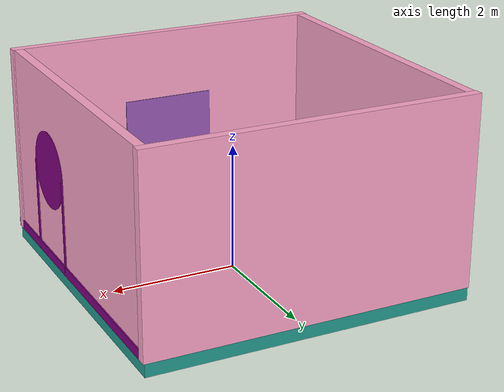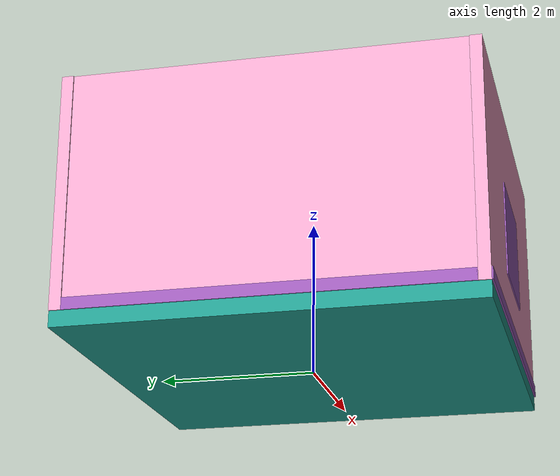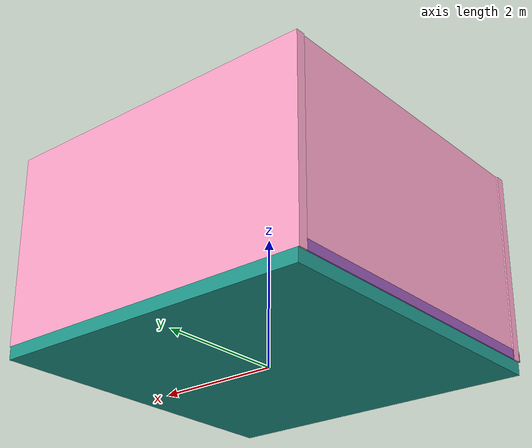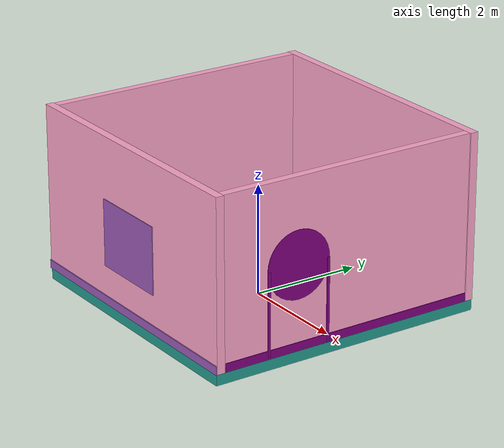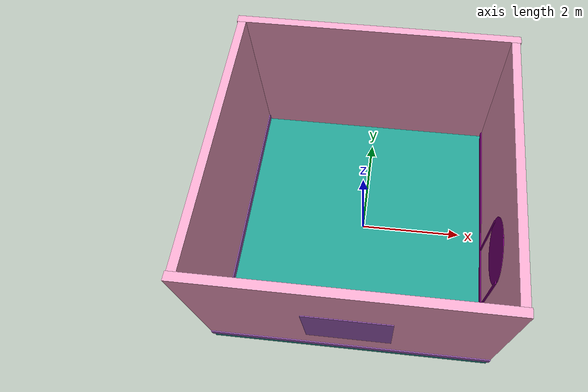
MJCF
<?xml version="1.0" encoding="utf-8"?>
<mujoco model="js7e01b6mxsftwqhk83pvdf6m5891mqv">

  <compiler angle="radian" autolimits="true" balanceinertia="true" boundmass="1.00e-6" boundinertia="1.00e-8"/>

  <option
    gravity="0 0 -9.8100"
    timestep="0.0050"
    integrator="implicitfast"
    cone="elliptic"
    impratio="10.00"
    solver="Newton"
    iterations="100"
    ls_iterations="50"
    tolerance="1.00e-8"
    ls_tolerance="0.0100"
    ccd_iterations="50"
    ccd_tolerance="1.00e-6"
    sdf_iterations="10"
    sdf_initpoints="40">
    <flag energy="enable" nativeccd="enable" island="enable"/>
  </option>

  <size nconmax="500" njmax="1500"/>
  <default>
    <geom condim="6" friction="0.8000 0.005 0.005" solref="0.005 1.2" solimp="0.95 0.99 0.001"/>
    <joint armature="0.01" damping="0.5"/>
  </default>

  <visual>
    <headlight ambient="0.18 0.18 0.18" diffuse="0.30 0.30 0.30" specular="0.0 0.0 0.0"/>
  </visual>

  <asset>
    <texture name="_ss_skybox" type="skybox" builtin="gradient" rgb1="0.1946 0.3968 1.0000" rgb2="0.9047 0.9387 1.0000" width="32" height="512"/>
    <material name="mat_0" rgba="0.4676 0.4676 0.4676 1.00" specular="0.050" shininess="0.090" metallic="0.000" roughness="0.900"/>
    <!-- simstudio: surfaceType=plastic -->
    <material name="mat_1" rgba="0.1320 0.6062 0.5558 1.00" specular="0.120" shininess="0.270" metallic="0.000" roughness="0.700"/>
    <!-- simstudio: surfaceType=plastic -->
    <material name="mat_2" rgba="0.9878 0.6452 0.7832 1.00" specular="0.120" shininess="0.270" metallic="0.000" roughness="0.700"/>
    <!-- simstudio: surfaceType=plastic -->
    <material name="mat_3" rgba="0.6023 0.3510 0.7080 1.00" specular="0.120" shininess="0.270" metallic="0.000" roughness="0.700"/>
    <!-- simstudio: surfaceType=plastic -->
    <material name="mat_4" rgba="0.4981 0.0000 0.4981 1.00" specular="0.120" shininess="0.270" metallic="0.000" roughness="0.700"/>
    <!-- simstudio: surfaceType=glass -->
    <material name="mat_5" rgba="0.7951 0.8950 1.0000 0.15" specular="0.500" shininess="0.882" metallic="0.000" roughness="0.020"/>
    <mesh name="bake_floor_box_0_0" vertex="2.57500 2.57500 0.10000 2.57500 -2.57500 0.10000 2.57500 2.57500 -0.10000 2.57500 -2.57500 0.10000 2.57500 -2.57500 -0.10000 2.57500 2.57500 -0.10000 -2.57500 2.57500 -0.10000 -2.57500 -2.57500 -0.10000 -2.57500 2.57500 0.10000 -2.57500 -2.57500 -0.10000 -2.57500 -2.57500 0.10000 -2.57500 2.57500 0.10000 -2.57500 2.57500 -0.10000 -2.57500 2.57500 0.10000 2.57500 2.57500 -0.10000 -2.57500 2.57500 0.10000 2.57500 2.57500 0.10000 2.57500 2.57500 -0.10000 -2.57500 -2.57500 0.10000 -2.57500 -2.57500 -0.10000 2.57500 -2.57500 0.10000 -2.57500 -2.57500 -0.10000 2.57500 -2.57500 -0.10000 2.57500 -2.57500 0.10000 -2.57500 2.57500 0.10000 -2.57500 -2.57500 0.10000 2.57500 2.57500 0.10000 -2.57500 -2.57500 0.10000 2.57500 -2.57500 0.10000 2.57500 2.57500 0.10000 2.57500 2.57500 -0.10000 2.57500 -2.57500 -0.10000 -2.57500 2.57500 -0.10000 2.57500 -2.57500 -0.10000 -2.57500 -2.57500 -0.10000 -2.57500 2.57500 -0.10000" face="0 1 2 3 4 5 6 7 8 9 10 11 12 13 14 15 16 17 18 19 20 21 22 23 24 25 26 27 28 29 30 31 32 33 34 35" texcoord="0.00000 1.00000 0.00000 0.00000 1.00000 1.00000 0.00000 0.00000 1.00000 0.00000 1.00000 1.00000 0.00000 1.00000 0.00000 0.00000 1.00000 1.00000 0.00000 0.00000 1.00000 0.00000 1.00000 1.00000 0.00000 1.00000 0.00000 0.00000 1.00000 1.00000 0.00000 0.00000 1.00000 0.00000 1.00000 1.00000 0.00000 1.00000 0.00000 0.00000 1.00000 1.00000 0.00000 0.00000 1.00000 0.00000 1.00000 1.00000 0.00000 1.00000 0.00000 0.00000 1.00000 1.00000 0.00000 0.00000 1.00000 0.00000 1.00000 1.00000 0.00000 1.00000 0.00000 0.00000 1.00000 1.00000 0.00000 0.00000 1.00000 0.00000 1.00000 1.00000"/>
    <mesh name="bake_north_wall_box_1_1" vertex="2.59500 0.07500 1.50000 2.59500 -0.07500 1.50000 2.59500 0.07500 -1.50000 2.59500 -0.07500 1.50000 2.59500 -0.07500 -1.50000 2.59500 0.07500 -1.50000 -2.59500 0.07500 -1.50000 -2.59500 -0.07500 -1.50000 -2.59500 0.07500 1.50000 -2.59500 -0.07500 -1.50000 -2.59500 -0.07500 1.50000 -2.59500 0.07500 1.50000 -2.59500 0.07500 -1.50000 -2.59500 0.07500 1.50000 2.59500 0.07500 -1.50000 -2.59500 0.07500 1.50000 2.59500 0.07500 1.50000 2.59500 0.07500 -1.50000 -2.59500 -0.07500 1.50000 -2.59500 -0.07500 -1.50000 2.59500 -0.07500 1.50000 -2.59500 -0.07500 -1.50000 2.59500 -0.07500 -1.50000 2.59500 -0.07500 1.50000 -2.59500 0.07500 1.50000 -2.59500 -0.07500 1.50000 2.59500 0.07500 1.50000 -2.59500 -0.07500 1.50000 2.59500 -0.07500 1.50000 2.59500 0.07500 1.50000 2.59500 0.07500 -1.50000 2.59500 -0.07500 -1.50000 -2.59500 0.07500 -1.50000 2.59500 -0.07500 -1.50000 -2.59500 -0.07500 -1.50000 -2.59500 0.07500 -1.50000" face="0 1 2 3 4 5 6 7 8 9 10 11 12 13 14 15 16 17 18 19 20 21 22 23 24 25 26 27 28 29 30 31 32 33 34 35" texcoord="0.00000 1.00000 0.00000 0.00000 1.00000 1.00000 0.00000 0.00000 1.00000 0.00000 1.00000 1.00000 0.00000 1.00000 0.00000 0.00000 1.00000 1.00000 0.00000 0.00000 1.00000 0.00000 1.00000 1.00000 0.00000 1.00000 0.00000 0.00000 1.00000 1.00000 0.00000 0.00000 1.00000 0.00000 1.00000 1.00000 0.00000 1.00000 0.00000 0.00000 1.00000 1.00000 0.00000 0.00000 1.00000 0.00000 1.00000 1.00000 0.00000 1.00000 0.00000 0.00000 1.00000 1.00000 0.00000 0.00000 1.00000 0.00000 1.00000 1.00000 0.00000 1.00000 0.00000 0.00000 1.00000 1.00000 0.00000 0.00000 1.00000 0.00000 1.00000 1.00000"/>
    <mesh name="bake_south_wall_baseboard_int_3" vertex="2.59500 0.01000 0.07500 2.59500 -0.01000 0.07500 2.59500 0.01000 -0.07500 2.59500 -0.01000 0.07500 2.59500 -0.01000 -0.07500 2.59500 0.01000 -0.07500 -2.59500 0.01000 -0.07500 -2.59500 -0.01000 -0.07500 -2.59500 0.01000 0.07500 -2.59500 -0.01000 -0.07500 -2.59500 -0.01000 0.07500 -2.59500 0.01000 0.07500 -2.59500 0.01000 -0.07500 -2.59500 0.01000 0.07500 2.59500 0.01000 -0.07500 -2.59500 0.01000 0.07500 2.59500 0.01000 0.07500 2.59500 0.01000 -0.07500 -2.59500 -0.01000 0.07500 -2.59500 -0.01000 -0.07500 2.59500 -0.01000 0.07500 -2.59500 -0.01000 -0.07500 2.59500 -0.01000 -0.07500 2.59500 -0.01000 0.07500 -2.59500 0.01000 0.07500 -2.59500 -0.01000 0.07500 2.59500 0.01000 0.07500 -2.59500 -0.01000 0.07500 2.59500 -0.01000 0.07500 2.59500 0.01000 0.07500 2.59500 0.01000 -0.07500 2.59500 -0.01000 -0.07500 -2.59500 0.01000 -0.07500 2.59500 -0.01000 -0.07500 -2.59500 -0.01000 -0.07500 -2.59500 0.01000 -0.07500" face="0 1 2 3 4 5 6 7 8 9 10 11 12 13 14 15 16 17 18 19 20 21 22 23 24 25 26 27 28 29 30 31 32 33 34 35" texcoord="0.00000 1.00000 0.00000 0.00000 1.00000 1.00000 0.00000 0.00000 1.00000 0.00000 1.00000 1.00000 0.00000 1.00000 0.00000 0.00000 1.00000 1.00000 0.00000 0.00000 1.00000 0.00000 1.00000 1.00000 0.00000 1.00000 0.00000 0.00000 1.00000 1.00000 0.00000 0.00000 1.00000 0.00000 1.00000 1.00000 0.00000 1.00000 0.00000 0.00000 1.00000 1.00000 0.00000 0.00000 1.00000 0.00000 1.00000 1.00000 0.00000 1.00000 0.00000 0.00000 1.00000 1.00000 0.00000 0.00000 1.00000 0.00000 1.00000 1.00000 0.00000 1.00000 0.00000 0.00000 1.00000 1.00000 0.00000 0.00000 1.00000 0.00000 1.00000 1.00000"/>
    <mesh name="bake_south_wall_window_frame_5" vertex="0.75000 0.09000 0.60000 0.75000 -0.09000 0.60000 0.75000 0.09000 -0.60000 0.75000 -0.09000 0.60000 0.75000 -0.09000 -0.60000 0.75000 0.09000 -0.60000 -0.75000 0.09000 -0.60000 -0.75000 -0.09000 -0.60000 -0.75000 0.09000 0.60000 -0.75000 -0.09000 -0.60000 -0.75000 -0.09000 0.60000 -0.75000 0.09000 0.60000 -0.75000 0.09000 -0.60000 -0.75000 0.09000 0.60000 0.75000 0.09000 -0.60000 -0.75000 0.09000 0.60000 0.75000 0.09000 0.60000 0.75000 0.09000 -0.60000 -0.75000 -0.09000 0.60000 -0.75000 -0.09000 -0.60000 0.75000 -0.09000 0.60000 -0.75000 -0.09000 -0.60000 0.75000 -0.09000 -0.60000 0.75000 -0.09000 0.60000 -0.75000 0.09000 0.60000 -0.75000 -0.09000 0.60000 0.75000 0.09000 0.60000 -0.75000 -0.09000 0.60000 0.75000 -0.09000 0.60000 0.75000 0.09000 0.60000 0.75000 0.09000 -0.60000 0.75000 -0.09000 -0.60000 -0.75000 0.09000 -0.60000 0.75000 -0.09000 -0.60000 -0.75000 -0.09000 -0.60000 -0.75000 0.09000 -0.60000" face="0 1 2 3 4 5 6 7 8 9 10 11 12 13 14 15 16 17 18 19 20 21 22 23 24 25 26 27 28 29 30 31 32 33 34 35" texcoord="0.00000 1.00000 0.00000 0.00000 1.00000 1.00000 0.00000 0.00000 1.00000 0.00000 1.00000 1.00000 0.00000 1.00000 0.00000 0.00000 1.00000 1.00000 0.00000 0.00000 1.00000 0.00000 1.00000 1.00000 0.00000 1.00000 0.00000 0.00000 1.00000 1.00000 0.00000 0.00000 1.00000 0.00000 1.00000 1.00000 0.00000 1.00000 0.00000 0.00000 1.00000 1.00000 0.00000 0.00000 1.00000 0.00000 1.00000 1.00000 0.00000 1.00000 0.00000 0.00000 1.00000 1.00000 0.00000 0.00000 1.00000 0.00000 1.00000 1.00000 0.00000 1.00000 0.00000 0.00000 1.00000 1.00000 0.00000 0.00000 1.00000 0.00000 1.00000 1.00000"/>
    <mesh name="bake_east_wall_box_6_6" vertex="0.07500 2.42500 1.50000 0.07500 -2.42500 1.50000 0.07500 2.42500 -1.50000 0.07500 -2.42500 1.50000 0.07500 -2.42500 -1.50000 0.07500 2.42500 -1.50000 -0.07500 2.42500 -1.50000 -0.07500 -2.42500 -1.50000 -0.07500 2.42500 1.50000 -0.07500 -2.42500 -1.50000 -0.07500 -2.42500 1.50000 -0.07500 2.42500 1.50000 -0.07500 2.42500 -1.50000 -0.07500 2.42500 1.50000 0.07500 2.42500 -1.50000 -0.07500 2.42500 1.50000 0.07500 2.42500 1.50000 0.07500 2.42500 -1.50000 -0.07500 -2.42500 1.50000 -0.07500 -2.42500 -1.50000 0.07500 -2.42500 1.50000 -0.07500 -2.42500 -1.50000 0.07500 -2.42500 -1.50000 0.07500 -2.42500 1.50000 -0.07500 2.42500 1.50000 -0.07500 -2.42500 1.50000 0.07500 2.42500 1.50000 -0.07500 -2.42500 1.50000 0.07500 -2.42500 1.50000 0.07500 2.42500 1.50000 0.07500 2.42500 -1.50000 0.07500 -2.42500 -1.50000 -0.07500 2.42500 -1.50000 0.07500 -2.42500 -1.50000 -0.07500 -2.42500 -1.50000 -0.07500 2.42500 -1.50000" face="0 1 2 3 4 5 6 7 8 9 10 11 12 13 14 15 16 17 18 19 20 21 22 23 24 25 26 27 28 29 30 31 32 33 34 35" texcoord="0.00000 1.00000 0.00000 0.00000 1.00000 1.00000 0.00000 0.00000 1.00000 0.00000 1.00000 1.00000 0.00000 1.00000 0.00000 0.00000 1.00000 1.00000 0.00000 0.00000 1.00000 0.00000 1.00000 1.00000 0.00000 1.00000 0.00000 0.00000 1.00000 1.00000 0.00000 0.00000 1.00000 0.00000 1.00000 1.00000 0.00000 1.00000 0.00000 0.00000 1.00000 1.00000 0.00000 0.00000 1.00000 0.00000 1.00000 1.00000 0.00000 1.00000 0.00000 0.00000 1.00000 1.00000 0.00000 0.00000 1.00000 0.00000 1.00000 1.00000 0.00000 1.00000 0.00000 0.00000 1.00000 1.00000 0.00000 0.00000 1.00000 0.00000 1.00000 1.00000"/>
    <mesh name="bake_east_wall_baseboard_int_7" vertex="0.01000 2.42500 0.07500 0.01000 -2.42500 0.07500 0.01000 2.42500 -0.07500 0.01000 -2.42500 0.07500 0.01000 -2.42500 -0.07500 0.01000 2.42500 -0.07500 -0.01000 2.42500 -0.07500 -0.01000 -2.42500 -0.07500 -0.01000 2.42500 0.07500 -0.01000 -2.42500 -0.07500 -0.01000 -2.42500 0.07500 -0.01000 2.42500 0.07500 -0.01000 2.42500 -0.07500 -0.01000 2.42500 0.07500 0.01000 2.42500 -0.07500 -0.01000 2.42500 0.07500 0.01000 2.42500 0.07500 0.01000 2.42500 -0.07500 -0.01000 -2.42500 0.07500 -0.01000 -2.42500 -0.07500 0.01000 -2.42500 0.07500 -0.01000 -2.42500 -0.07500 0.01000 -2.42500 -0.07500 0.01000 -2.42500 0.07500 -0.01000 2.42500 0.07500 -0.01000 -2.42500 0.07500 0.01000 2.42500 0.07500 -0.01000 -2.42500 0.07500 0.01000 -2.42500 0.07500 0.01000 2.42500 0.07500 0.01000 2.42500 -0.07500 0.01000 -2.42500 -0.07500 -0.01000 2.42500 -0.07500 0.01000 -2.42500 -0.07500 -0.01000 -2.42500 -0.07500 -0.01000 2.42500 -0.07500" face="0 1 2 3 4 5 6 7 8 9 10 11 12 13 14 15 16 17 18 19 20 21 22 23 24 25 26 27 28 29 30 31 32 33 34 35" texcoord="0.00000 1.00000 0.00000 0.00000 1.00000 1.00000 0.00000 0.00000 1.00000 0.00000 1.00000 1.00000 0.00000 1.00000 0.00000 0.00000 1.00000 1.00000 0.00000 0.00000 1.00000 0.00000 1.00000 1.00000 0.00000 1.00000 0.00000 0.00000 1.00000 1.00000 0.00000 0.00000 1.00000 0.00000 1.00000 1.00000 0.00000 1.00000 0.00000 0.00000 1.00000 1.00000 0.00000 0.00000 1.00000 0.00000 1.00000 1.00000 0.00000 1.00000 0.00000 0.00000 1.00000 1.00000 0.00000 0.00000 1.00000 0.00000 1.00000 1.00000 0.00000 1.00000 0.00000 0.00000 1.00000 1.00000 0.00000 0.00000 1.00000 0.00000 1.00000 1.00000"/>
    <mesh name="bake_east_wall_frame_left_9" vertex="0.09500 0.02500 0.75000 0.09500 -0.02500 0.75000 0.09500 0.02500 -0.75000 0.09500 -0.02500 0.75000 0.09500 -0.02500 -0.75000 0.09500 0.02500 -0.75000 -0.09500 0.02500 -0.75000 -0.09500 -0.02500 -0.75000 -0.09500 0.02500 0.75000 -0.09500 -0.02500 -0.75000 -0.09500 -0.02500 0.75000 -0.09500 0.02500 0.75000 -0.09500 0.02500 -0.75000 -0.09500 0.02500 0.75000 0.09500 0.02500 -0.75000 -0.09500 0.02500 0.75000 0.09500 0.02500 0.75000 0.09500 0.02500 -0.75000 -0.09500 -0.02500 0.75000 -0.09500 -0.02500 -0.75000 0.09500 -0.02500 0.75000 -0.09500 -0.02500 -0.75000 0.09500 -0.02500 -0.75000 0.09500 -0.02500 0.75000 -0.09500 0.02500 0.75000 -0.09500 -0.02500 0.75000 0.09500 0.02500 0.75000 -0.09500 -0.02500 0.75000 0.09500 -0.02500 0.75000 0.09500 0.02500 0.75000 0.09500 0.02500 -0.75000 0.09500 -0.02500 -0.75000 -0.09500 0.02500 -0.75000 0.09500 -0.02500 -0.75000 -0.09500 -0.02500 -0.75000 -0.09500 0.02500 -0.75000" face="0 1 2 3 4 5 6 7 8 9 10 11 12 13 14 15 16 17 18 19 20 21 22 23 24 25 26 27 28 29 30 31 32 33 34 35" texcoord="0.00000 1.00000 0.00000 0.00000 1.00000 1.00000 0.00000 0.00000 1.00000 0.00000 1.00000 1.00000 0.00000 1.00000 0.00000 0.00000 1.00000 1.00000 0.00000 0.00000 1.00000 0.00000 1.00000 1.00000 0.00000 1.00000 0.00000 0.00000 1.00000 1.00000 0.00000 0.00000 1.00000 0.00000 1.00000 1.00000 0.00000 1.00000 0.00000 0.00000 1.00000 1.00000 0.00000 0.00000 1.00000 0.00000 1.00000 1.00000 0.00000 1.00000 0.00000 0.00000 1.00000 1.00000 0.00000 0.00000 1.00000 0.00000 1.00000 1.00000 0.00000 1.00000 0.00000 0.00000 1.00000 1.00000 0.00000 0.00000 1.00000 0.00000 1.00000 1.00000"/>
    <mesh name="bake_east_wall_frame_arch_11" vertex="0.00000 -0.60000 0.08500 0.00000 -0.60000 -0.08500 0.11705 -0.58847 0.08500 0.00000 -0.60000 -0.08500 0.11705 -0.58847 -0.08500 0.11705 -0.58847 0.08500 0.11705 -0.58847 0.08500 0.11705 -0.58847 -0.08500 0.22961 -0.55433 0.08500 0.11705 -0.58847 -0.08500 0.22961 -0.55433 -0.08500 0.22961 -0.55433 0.08500 0.22961 -0.55433 0.08500 0.22961 -0.55433 -0.08500 0.33334 -0.49888 0.08500 0.22961 -0.55433 -0.08500 0.33334 -0.49888 -0.08500 0.33334 -0.49888 0.08500 0.33334 -0.49888 0.08500 0.33334 -0.49888 -0.08500 0.42426 -0.42426 0.08500 0.33334 -0.49888 -0.08500 0.42426 -0.42426 -0.08500 0.42426 -0.42426 0.08500 0.42426 -0.42426 0.08500 0.42426 -0.42426 -0.08500 0.49888 -0.33334 0.08500 0.42426 -0.42426 -0.08500 0.49888 -0.33334 -0.08500 0.49888 -0.33334 0.08500 0.49888 -0.33334 0.08500 0.49888 -0.33334 -0.08500 0.55433 -0.22961 0.08500 0.49888 -0.33334 -0.08500 0.55433 -0.22961 -0.08500 0.55433 -0.22961 0.08500 0.55433 -0.22961 0.08500 0.55433 -0.22961 -0.08500 0.58847 -0.11705 0.08500 0.55433 -0.22961 -0.08500 0.58847 -0.11705 -0.08500 0.58847 -0.11705 0.08500 0.58847 -0.11705 0.08500 0.58847 -0.11705 -0.08500 0.60000 -0.00000 0.08500 0.58847 -0.11705 -0.08500 0.60000 -0.00000 -0.08500 0.60000 -0.00000 0.08500 0.60000 -0.00000 0.08500 0.60000 -0.00000 -0.08500 0.58847 0.11705 0.08500 0.60000 -0.00000 -0.08500 0.58847 0.11705 -0.08500 0.58847 0.11705 0.08500 0.58847 0.11705 0.08500 0.58847 0.11705 -0.08500 0.55433 0.22961 0.08500 0.58847 0.11705 -0.08500 0.55433 0.22961 -0.08500 0.55433 0.22961 0.08500 0.55433 0.22961 0.08500 0.55433 0.22961 -0.08500 0.49888 0.33334 0.08500 0.55433 0.22961 -0.08500 0.49888 0.33334 -0.08500 0.49888 0.33334 0.08500 0.49888 0.33334 0.08500 0.49888 0.33334 -0.08500 0.42426 0.42426 0.08500 0.49888 0.33334 -0.08500 0.42426 0.42426 -0.08500 0.42426 0.42426 0.08500 0.42426 0.42426 0.08500 0.42426 0.42426 -0.08500 0.33334 0.49888 0.08500 0.42426 0.42426 -0.08500 0.33334 0.49888 -0.08500 0.33334 0.49888 0.08500 0.33334 0.49888 0.08500 0.33334 0.49888 -0.08500 0.22961 0.55433 0.08500 0.33334 0.49888 -0.08500 0.22961 0.55433 -0.08500 0.22961 0.55433 0.08500 0.22961 0.55433 0.08500 0.22961 0.55433 -0.08500 0.11705 0.58847 0.08500 0.22961 0.55433 -0.08500 0.11705 0.58847 -0.08500 0.11705 0.58847 0.08500 0.11705 0.58847 0.08500 0.11705 0.58847 -0.08500 0.00000 0.60000 0.08500 0.11705 0.58847 -0.08500 0.00000 0.60000 -0.08500 0.00000 0.60000 0.08500 0.00000 0.60000 0.08500 0.00000 0.60000 -0.08500 -0.11705 0.58847 0.08500 0.00000 0.60000 -0.08500 -0.11705 0.58847 -0.08500 -0.11705 0.58847 0.08500 -0.11705 0.58847 0.08500 -0.11705 0.58847 -0.08500 -0.22961 0.55433 0.08500 -0.11705 0.58847 -0.08500 -0.22961 0.55433 -0.08500 -0.22961 0.55433 0.08500 -0.22961 0.55433 0.08500 -0.22961 0.55433 -0.08500 -0.33334 0.49888 0.08500 -0.22961 0.55433 -0.08500 -0.33334 0.49888 -0.08500 -0.33334 0.49888 0.08500 -0.33334 0.49888 0.08500 -0.33334 0.49888 -0.08500 -0.42426 0.42426 0.08500 -0.33334 0.49888 -0.08500 -0.42426 0.42426 -0.08500 -0.42426 0.42426 0.08500 -0.42426 0.42426 0.08500 -0.42426 0.42426 -0.08500 -0.49888 0.33334 0.08500 -0.42426 0.42426 -0.08500 -0.49888 0.33334 -0.08500 -0.49888 0.33334 0.08500 -0.49888 0.33334 0.08500 -0.49888 0.33334 -0.08500 -0.55433 0.22961 0.08500 -0.49888 0.33334 -0.08500 -0.55433 0.22961 -0.08500 -0.55433 0.22961 0.08500 -0.55433 0.22961 0.08500 -0.55433 0.22961 -0.08500 -0.58847 0.11705 0.08500 -0.55433 0.22961 -0.08500 -0.58847 0.11705 -0.08500 -0.58847 0.11705 0.08500 -0.58847 0.11705 0.08500 -0.58847 0.11705 -0.08500 -0.60000 0.00000 0.08500 -0.58847 0.11705 -0.08500 -0.60000 0.00000 -0.08500 -0.60000 0.00000 0.08500 -0.60000 0.00000 0.08500 -0.60000 0.00000 -0.08500 -0.58847 -0.11705 0.08500 -0.60000 0.00000 -0.08500 -0.58847 -0.11705 -0.08500 -0.58847 -0.11705 0.08500 -0.58847 -0.11705 0.08500 -0.58847 -0.11705 -0.08500 -0.55433 -0.22961 0.08500 -0.58847 -0.11705 -0.08500 -0.55433 -0.22961 -0.08500 -0.55433 -0.22961 0.08500 -0.55433 -0.22961 0.08500 -0.55433 -0.22961 -0.08500 -0.49888 -0.33334 0.08500 -0.55433 -0.22961 -0.08500 -0.49888 -0.33334 -0.08500 -0.49888 -0.33334 0.08500 -0.49888 -0.33334 0.08500 -0.49888 -0.33334 -0.08500 -0.42426 -0.42426 0.08500 -0.49888 -0.33334 -0.08500 -0.42426 -0.42426 -0.08500 -0.42426 -0.42426 0.08500 -0.42426 -0.42426 0.08500 -0.42426 -0.42426 -0.08500 -0.33334 -0.49888 0.08500 -0.42426 -0.42426 -0.08500 -0.33334 -0.49888 -0.08500 -0.33334 -0.49888 0.08500 -0.33334 -0.49888 0.08500 -0.33334 -0.49888 -0.08500 -0.22961 -0.55433 0.08500 -0.33334 -0.49888 -0.08500 -0.22961 -0.55433 -0.08500 -0.22961 -0.55433 0.08500 -0.22961 -0.55433 0.08500 -0.22961 -0.55433 -0.08500 -0.11705 -0.58847 0.08500 -0.22961 -0.55433 -0.08500 -0.11705 -0.58847 -0.08500 -0.11705 -0.58847 0.08500 -0.11705 -0.58847 0.08500 -0.11705 -0.58847 -0.08500 -0.00000 -0.60000 0.08500 -0.11705 -0.58847 -0.08500 -0.00000 -0.60000 -0.08500 -0.00000 -0.60000 0.08500 0.00000 -0.60000 0.08500 0.11705 -0.58847 0.08500 0.00000 0.00000 0.08500 0.11705 -0.58847 0.08500 0.22961 -0.55433 0.08500 0.00000 0.00000 0.08500 0.22961 -0.55433 0.08500 0.33334 -0.49888 0.08500 0.00000 0.00000 0.08500 0.33334 -0.49888 0.08500 0.42426 -0.42426 0.08500 0.00000 0.00000 0.08500 0.42426 -0.42426 0.08500 0.49888 -0.33334 0.08500 0.00000 0.00000 0.08500 0.49888 -0.33334 0.08500 0.55433 -0.22961 0.08500 0.00000 0.00000 0.08500 0.55433 -0.22961 0.08500 0.58847 -0.11705 0.08500 0.00000 0.00000 0.08500 0.58847 -0.11705 0.08500 0.60000 -0.00000 0.08500 0.00000 0.00000 0.08500 0.60000 -0.00000 0.08500 0.58847 0.11705 0.08500 0.00000 0.00000 0.08500 0.58847 0.11705 0.08500 0.55433 0.22961 0.08500 0.00000 0.00000 0.08500 0.55433 0.22961 0.08500 0.49888 0.33334 0.08500 0.00000 0.00000 0.08500 0.49888 0.33334 0.08500 0.42426 0.42426 0.08500 0.00000 0.00000 0.08500 0.42426 0.42426 0.08500 0.33334 0.49888 0.08500 0.00000 0.00000 0.08500 0.33334 0.49888 0.08500 0.22961 0.55433 0.08500 0.00000 0.00000 0.08500 0.22961 0.55433 0.08500 0.11705 0.58847 0.08500 0.00000 0.00000 0.08500 0.11705 0.58847 0.08500 0.00000 0.60000 0.08500 0.00000 0.00000 0.08500 0.00000 0.60000 0.08500 -0.11705 0.58847 0.08500 0.00000 0.00000 0.08500 -0.11705 0.58847 0.08500 -0.22961 0.55433 0.08500 0.00000 0.00000 0.08500 -0.22961 0.55433 0.08500 -0.33334 0.49888 0.08500 0.00000 0.00000 0.08500 -0.33334 0.49888 0.08500 -0.42426 0.42426 0.08500 0.00000 0.00000 0.08500 -0.42426 0.42426 0.08500 -0.49888 0.33334 0.08500 0.00000 0.00000 0.08500 -0.49888 0.33334 0.08500 -0.55433 0.22961 0.08500 0.00000 0.00000 0.08500 -0.55433 0.22961 0.08500 -0.58847 0.11705 0.08500 0.00000 0.00000 0.08500 -0.58847 0.11705 0.08500 -0.60000 0.00000 0.08500 0.00000 0.00000 0.08500 -0.60000 0.00000 0.08500 -0.58847 -0.11705 0.08500 0.00000 0.00000 0.08500 -0.58847 -0.11705 0.08500 -0.55433 -0.22961 0.08500 0.00000 0.00000 0.08500 -0.55433 -0.22961 0.08500 -0.49888 -0.33334 0.08500 0.00000 0.00000 0.08500 -0.49888 -0.33334 0.08500 -0.42426 -0.42426 0.08500 0.00000 0.00000 0.08500 -0.42426 -0.42426 0.08500 -0.33334 -0.49888 0.08500 0.00000 0.00000 0.08500 -0.33334 -0.49888 0.08500 -0.22961 -0.55433 0.08500 0.00000 0.00000 0.08500 -0.22961 -0.55433 0.08500 -0.11705 -0.58847 0.08500 0.00000 0.00000 0.08500 -0.11705 -0.58847 0.08500 -0.00000 -0.60000 0.08500 0.00000 0.00000 0.08500 0.11705 -0.58847 -0.08500 0.00000 -0.60000 -0.08500 0.00000 -0.00000 -0.08500 0.22961 -0.55433 -0.08500 0.11705 -0.58847 -0.08500 0.00000 -0.00000 -0.08500 0.33334 -0.49888 -0.08500 0.22961 -0.55433 -0.08500 0.00000 -0.00000 -0.08500 0.42426 -0.42426 -0.08500 0.33334 -0.49888 -0.08500 0.00000 -0.00000 -0.08500 0.49888 -0.33334 -0.08500 0.42426 -0.42426 -0.08500 0.00000 -0.00000 -0.08500 0.55433 -0.22961 -0.08500 0.49888 -0.33334 -0.08500 0.00000 -0.00000 -0.08500 0.58847 -0.11705 -0.08500 0.55433 -0.22961 -0.08500 0.00000 -0.00000 -0.08500 0.60000 -0.00000 -0.08500 0.58847 -0.11705 -0.08500 0.00000 -0.00000 -0.08500 0.58847 0.11705 -0.08500 0.60000 -0.00000 -0.08500 0.00000 -0.00000 -0.08500 0.55433 0.22961 -0.08500 0.58847 0.11705 -0.08500 0.00000 -0.00000 -0.08500 0.49888 0.33334 -0.08500 0.55433 0.22961 -0.08500 0.00000 -0.00000 -0.08500 0.42426 0.42426 -0.08500 0.49888 0.33334 -0.08500 0.00000 -0.00000 -0.08500 0.33334 0.49888 -0.08500 0.42426 0.42426 -0.08500 0.00000 -0.00000 -0.08500 0.22961 0.55433 -0.08500 0.33334 0.49888 -0.08500 0.00000 -0.00000 -0.08500 0.11705 0.58847 -0.08500 0.22961 0.55433 -0.08500 0.00000 -0.00000 -0.08500 0.00000 0.60000 -0.08500 0.11705 0.58847 -0.08500 0.00000 -0.00000 -0.08500 -0.11705 0.58847 -0.08500 0.00000 0.60000 -0.08500 0.00000 -0.00000 -0.08500 -0.22961 0.55433 -0.08500 -0.11705 0.58847 -0.08500 0.00000 -0.00000 -0.08500 -0.33334 0.49888 -0.08500 -0.22961 0.55433 -0.08500 0.00000 -0.00000 -0.08500 -0.42426 0.42426 -0.08500 -0.33334 0.49888 -0.08500 0.00000 -0.00000 -0.08500 -0.49888 0.33334 -0.08500 -0.42426 0.42426 -0.08500 0.00000 -0.00000 -0.08500 -0.55433 0.22961 -0.08500 -0.49888 0.33334 -0.08500 0.00000 -0.00000 -0.08500 -0.58847 0.11705 -0.08500 -0.55433 0.22961 -0.08500 0.00000 -0.00000 -0.08500 -0.60000 0.00000 -0.08500 -0.58847 0.11705 -0.08500 0.00000 -0.00000 -0.08500 -0.58847 -0.11705 -0.08500 -0.60000 0.00000 -0.08500 0.00000 -0.00000 -0.08500 -0.55433 -0.22961 -0.08500 -0.58847 -0.11705 -0.08500 0.00000 -0.00000 -0.08500 -0.49888 -0.33334 -0.08500 -0.55433 -0.22961 -0.08500 0.00000 -0.00000 -0.08500 -0.42426 -0.42426 -0.08500 -0.49888 -0.33334 -0.08500 0.00000 -0.00000 -0.08500 -0.33334 -0.49888 -0.08500 -0.42426 -0.42426 -0.08500 0.00000 -0.00000 -0.08500 -0.22961 -0.55433 -0.08500 -0.33334 -0.49888 -0.08500 0.00000 -0.00000 -0.08500 -0.11705 -0.58847 -0.08500 -0.22961 -0.55433 -0.08500 0.00000 -0.00000 -0.08500 -0.00000 -0.60000 -0.08500 -0.11705 -0.58847 -0.08500 0.00000 -0.00000 -0.08500" face="0 1 2 0 2 1 3 4 5 3 5 4 6 7 8 6 8 7 9 10 11 9 11 10 12 13 14 12 14 13 15 16 17 15 17 16 18 19 20 18 20 19 21 22 23 21 23 22 24 25 26 24 26 25 27 28 29 27 29 28 30 31 32 30 32 31 33 34 35 33 35 34 36 37 38 36 38 37 39 40 41 39 41 40 42 43 44 42 44 43 45 46 47 45 47 46 48 49 50 48 50 49 51 52 53 51 53 52 54 55 56 54 56 55 57 58 59 57 59 58 60 61 62 60 62 61 63 64 65 63 65 64 66 67 68 66 68 67 69 70 71 69 71 70 72 73 74 72 74 73 75 76 77 75 77 76 78 79 80 78 80 79 81 82 83 81 83 82 84 85 86 84 86 85 87 88 89 87 89 88 90 91 92 90 92 91 93 94 95 93 95 94 96 97 98 96 98 97 99 100 101 99 101 100 102 103 104 102 104 103 105 106 107 105 107 106 108 109 110 108 110 109 111 112 113 111 113 112 114 115 116 114 116 115 117 118 119 117 119 118 120 121 122 120 122 121 123 124 125 123 125 124 126 127 128 126 128 127 129 130 131 129 131 130 132 133 134 132 134 133 135 136 137 135 137 136 138 139 140 138 140 139 141 142 143 141 143 142 144 145 146 144 146 145 147 148 149 147 149 148 150 151 152 150 152 151 153 154 155 153 155 154 156 157 158 156 158 157 159 160 161 159 161 160 162 163 164 162 164 163 165 166 167 165 167 166 168 169 170 168 170 169 171 172 173 171 173 172 174 175 176 174 176 175 177 178 179 177 179 178 180 181 182 180 182 181 183 184 185 183 185 184 186 187 188 186 188 187 189 190 191 189 191 190 192 193 194 192 194 193 195 196 197 195 197 196 198 199 200 198 200 199 201 202 203 201 203 202 204 205 206 204 206 205 207 208 209 207 209 208 210 211 212 210 212 211 213 214 215 213 215 214 216 217 218 216 218 217 219 220 221 219 221 220 222 223 224 222 224 223 225 226 227 225 227 226 228 229 230 228 230 229 231 232 233 231 233 232 234 235 236 234 236 235 237 238 239 237 239 238 240 241 242 240 242 241 243 244 245 243 245 244 246 247 248 246 248 247 249 250 251 249 251 250 252 253 254 252 254 253 255 256 257 255 257 256 258 259 260 258 260 259 261 262 263 261 263 262 264 265 266 264 266 265 267 268 269 267 269 268 270 271 272 270 272 271 273 274 275 273 275 274 276 277 278 276 278 277 279 280 281 279 281 280 282 283 284 282 284 283 285 286 287 285 287 286 288 289 290 288 290 289 291 292 293 291 293 292 294 295 296 294 296 295 297 298 299 297 299 298 300 301 302 300 302 301 303 304 305 303 305 304 306 307 308 306 308 307 309 310 311 309 311 310 312 313 314 312 314 313 315 316 317 315 317 316 318 319 320 318 320 319 321 322 323 321 323 322 324 325 326 324 326 325 327 328 329 327 329 328 330 331 332 330 332 331 333 334 335 333 335 334 336 337 338 336 338 337 339 340 341 339 341 340 342 343 344 342 344 343 345 346 347 345 347 346 348 349 350 348 350 349 351 352 353 351 353 352 354 355 356 354 356 355 357 358 359 357 359 358 360 361 362 360 362 361 363 364 365 363 365 364 366 367 368 366 368 367 369 370 371 369 371 370 372 373 374 372 374 373 375 376 377 375 377 376 378 379 380 378 380 379 381 382 383 381 383 382" texcoord="0.00000 1.00000 0.00000 0.00000 0.03125 1.00000 0.00000 0.00000 0.03125 0.00000 0.03125 1.00000 0.03125 1.00000 0.03125 0.00000 0.06250 1.00000 0.03125 0.00000 0.06250 0.00000 0.06250 1.00000 0.06250 1.00000 0.06250 0.00000 0.09375 1.00000 0.06250 0.00000 0.09375 0.00000 0.09375 1.00000 0.09375 1.00000 0.09375 0.00000 0.12500 1.00000 0.09375 0.00000 0.12500 0.00000 0.12500 1.00000 0.12500 1.00000 0.12500 0.00000 0.15625 1.00000 0.12500 0.00000 0.15625 0.00000 0.15625 1.00000 0.15625 1.00000 0.15625 0.00000 0.18750 1.00000 0.15625 0.00000 0.18750 0.00000 0.18750 1.00000 0.18750 1.00000 0.18750 0.00000 0.21875 1.00000 0.18750 0.00000 0.21875 0.00000 0.21875 1.00000 0.21875 1.00000 0.21875 0.00000 0.25000 1.00000 0.21875 0.00000 0.25000 0.00000 0.25000 1.00000 0.25000 1.00000 0.25000 0.00000 0.28125 1.00000 0.25000 0.00000 0.28125 0.00000 0.28125 1.00000 0.28125 1.00000 0.28125 0.00000 0.31250 1.00000 0.28125 0.00000 0.31250 0.00000 0.31250 1.00000 0.31250 1.00000 0.31250 0.00000 0.34375 1.00000 0.31250 0.00000 0.34375 0.00000 0.34375 1.00000 0.34375 1.00000 0.34375 0.00000 0.37500 1.00000 0.34375 0.00000 0.37500 0.00000 0.37500 1.00000 0.37500 1.00000 0.37500 0.00000 0.40625 1.00000 0.37500 0.00000 0.40625 0.00000 0.40625 1.00000 0.40625 1.00000 0.40625 0.00000 0.43750 1.00000 0.40625 0.00000 0.43750 0.00000 0.43750 1.00000 0.43750 1.00000 0.43750 0.00000 0.46875 1.00000 0.43750 0.00000 0.46875 0.00000 0.46875 1.00000 0.46875 1.00000 0.46875 0.00000 0.50000 1.00000 0.46875 0.00000 0.50000 0.00000 0.50000 1.00000 0.50000 1.00000 0.50000 0.00000 0.53125 1.00000 0.50000 0.00000 0.53125 0.00000 0.53125 1.00000 0.53125 1.00000 0.53125 0.00000 0.56250 1.00000 0.53125 0.00000 0.56250 0.00000 0.56250 1.00000 0.56250 1.00000 0.56250 0.00000 0.59375 1.00000 0.56250 0.00000 0.59375 0.00000 0.59375 1.00000 0.59375 1.00000 0.59375 0.00000 0.62500 1.00000 0.59375 0.00000 0.62500 0.00000 0.62500 1.00000 0.62500 1.00000 0.62500 0.00000 0.65625 1.00000 0.62500 0.00000 0.65625 0.00000 0.65625 1.00000 0.65625 1.00000 0.65625 0.00000 0.68750 1.00000 0.65625 0.00000 0.68750 0.00000 0.68750 1.00000 0.68750 1.00000 0.68750 0.00000 0.71875 1.00000 0.68750 0.00000 0.71875 0.00000 0.71875 1.00000 0.71875 1.00000 0.71875 0.00000 0.75000 1.00000 0.71875 0.00000 0.75000 0.00000 0.75000 1.00000 0.75000 1.00000 0.75000 0.00000 0.78125 1.00000 0.75000 0.00000 0.78125 0.00000 0.78125 1.00000 0.78125 1.00000 0.78125 0.00000 0.81250 1.00000 0.78125 0.00000 0.81250 0.00000 0.81250 1.00000 0.81250 1.00000 0.81250 0.00000 0.84375 1.00000 0.81250 0.00000 0.84375 0.00000 0.84375 1.00000 0.84375 1.00000 0.84375 0.00000 0.87500 1.00000 0.84375 0.00000 0.87500 0.00000 0.87500 1.00000 0.87500 1.00000 0.87500 0.00000 0.90625 1.00000 0.87500 0.00000 0.90625 0.00000 0.90625 1.00000 0.90625 1.00000 0.90625 0.00000 0.93750 1.00000 0.90625 0.00000 0.93750 0.00000 0.93750 1.00000 0.93750 1.00000 0.93750 0.00000 0.96875 1.00000 0.93750 0.00000 0.96875 0.00000 0.96875 1.00000 0.96875 1.00000 0.96875 0.00000 1.00000 1.00000 0.96875 0.00000 1.00000 0.00000 1.00000 1.00000 1.00000 0.50000 0.99039 0.59755 0.50000 0.50000 0.99039 0.59755 0.96194 0.69134 0.50000 0.50000 0.96194 0.69134 0.91573 0.77779 0.50000 0.50000 0.91573 0.77779 0.85355 0.85355 0.50000 0.50000 0.85355 0.85355 0.77779 0.91573 0.50000 0.50000 0.77779 0.91573 0.69134 0.96194 0.50000 0.50000 0.69134 0.96194 0.59755 0.99039 0.50000 0.50000 0.59755 0.99039 0.50000 1.00000 0.50000 0.50000 0.50000 1.00000 0.40245 0.99039 0.50000 0.50000 0.40245 0.99039 0.30866 0.96194 0.50000 0.50000 0.30866 0.96194 0.22221 0.91573 0.50000 0.50000 0.22221 0.91573 0.14645 0.85355 0.50000 0.50000 0.14645 0.85355 0.08427 0.77779 0.50000 0.50000 0.08427 0.77779 0.03806 0.69134 0.50000 0.50000 0.03806 0.69134 0.00961 0.59755 0.50000 0.50000 0.00961 0.59755 0.00000 0.50000 0.50000 0.50000 0.00000 0.50000 0.00961 0.40245 0.50000 0.50000 0.00961 0.40245 0.03806 0.30866 0.50000 0.50000 0.03806 0.30866 0.08427 0.22221 0.50000 0.50000 0.08427 0.22221 0.14645 0.14645 0.50000 0.50000 0.14645 0.14645 0.22221 0.08427 0.50000 0.50000 0.22221 0.08427 0.30866 0.03806 0.50000 0.50000 0.30866 0.03806 0.40245 0.00961 0.50000 0.50000 0.40245 0.00961 0.50000 0.00000 0.50000 0.50000 0.50000 0.00000 0.59755 0.00961 0.50000 0.50000 0.59755 0.00961 0.69134 0.03806 0.50000 0.50000 0.69134 0.03806 0.77779 0.08427 0.50000 0.50000 0.77779 0.08427 0.85355 0.14645 0.50000 0.50000 0.85355 0.14645 0.91573 0.22221 0.50000 0.50000 0.91573 0.22221 0.96194 0.30866 0.50000 0.50000 0.96194 0.30866 0.99039 0.40245 0.50000 0.50000 0.99039 0.40245 1.00000 0.50000 0.50000 0.50000 0.99039 0.40245 1.00000 0.50000 0.50000 0.50000 0.96194 0.30866 0.99039 0.40245 0.50000 0.50000 0.91573 0.22221 0.96194 0.30866 0.50000 0.50000 0.85355 0.14645 0.91573 0.22221 0.50000 0.50000 0.77779 0.08427 0.85355 0.14645 0.50000 0.50000 0.69134 0.03806 0.77779 0.08427 0.50000 0.50000 0.59755 0.00961 0.69134 0.03806 0.50000 0.50000 0.50000 0.00000 0.59755 0.00961 0.50000 0.50000 0.40245 0.00961 0.50000 0.00000 0.50000 0.50000 0.30866 0.03806 0.40245 0.00961 0.50000 0.50000 0.22221 0.08427 0.30866 0.03806 0.50000 0.50000 0.14645 0.14645 0.22221 0.08427 0.50000 0.50000 0.08427 0.22221 0.14645 0.14645 0.50000 0.50000 0.03806 0.30866 0.08427 0.22221 0.50000 0.50000 0.00961 0.40245 0.03806 0.30866 0.50000 0.50000 0.00000 0.50000 0.00961 0.40245 0.50000 0.50000 0.00961 0.59755 0.00000 0.50000 0.50000 0.50000 0.03806 0.69134 0.00961 0.59755 0.50000 0.50000 0.08427 0.77779 0.03806 0.69134 0.50000 0.50000 0.14645 0.85355 0.08427 0.77779 0.50000 0.50000 0.22221 0.91573 0.14645 0.85355 0.50000 0.50000 0.30866 0.96194 0.22221 0.91573 0.50000 0.50000 0.40245 0.99039 0.30866 0.96194 0.50000 0.50000 0.50000 1.00000 0.40245 0.99039 0.50000 0.50000 0.59755 0.99039 0.50000 1.00000 0.50000 0.50000 0.69134 0.96194 0.59755 0.99039 0.50000 0.50000 0.77779 0.91573 0.69134 0.96194 0.50000 0.50000 0.85355 0.85355 0.77779 0.91573 0.50000 0.50000 0.91573 0.77779 0.85355 0.85355 0.50000 0.50000 0.96194 0.69134 0.91573 0.77779 0.50000 0.50000 0.99039 0.59755 0.96194 0.69134 0.50000 0.50000 1.00000 0.50000 0.99039 0.59755 0.50000 0.50000"/>
    <mesh name="bake_south_win_glass_box_15" vertex="0.75000 0.01000 0.60000 0.75000 -0.01000 0.60000 0.75000 0.01000 -0.60000 0.75000 -0.01000 0.60000 0.75000 -0.01000 -0.60000 0.75000 0.01000 -0.60000 -0.75000 0.01000 -0.60000 -0.75000 -0.01000 -0.60000 -0.75000 0.01000 0.60000 -0.75000 -0.01000 -0.60000 -0.75000 -0.01000 0.60000 -0.75000 0.01000 0.60000 -0.75000 0.01000 -0.60000 -0.75000 0.01000 0.60000 0.75000 0.01000 -0.60000 -0.75000 0.01000 0.60000 0.75000 0.01000 0.60000 0.75000 0.01000 -0.60000 -0.75000 -0.01000 0.60000 -0.75000 -0.01000 -0.60000 0.75000 -0.01000 0.60000 -0.75000 -0.01000 -0.60000 0.75000 -0.01000 -0.60000 0.75000 -0.01000 0.60000 -0.75000 0.01000 0.60000 -0.75000 -0.01000 0.60000 0.75000 0.01000 0.60000 -0.75000 -0.01000 0.60000 0.75000 -0.01000 0.60000 0.75000 0.01000 0.60000 0.75000 0.01000 -0.60000 0.75000 -0.01000 -0.60000 -0.75000 0.01000 -0.60000 0.75000 -0.01000 -0.60000 -0.75000 -0.01000 -0.60000 -0.75000 0.01000 -0.60000" face="0 1 2 3 4 5 6 7 8 9 10 11 12 13 14 15 16 17 18 19 20 21 22 23 24 25 26 27 28 29 30 31 32 33 34 35" texcoord="0.00000 1.00000 0.00000 0.00000 1.00000 1.00000 0.00000 0.00000 1.00000 0.00000 1.00000 1.00000 0.00000 1.00000 0.00000 0.00000 1.00000 1.00000 0.00000 0.00000 1.00000 0.00000 1.00000 1.00000 0.00000 1.00000 0.00000 0.00000 1.00000 1.00000 0.00000 0.00000 1.00000 0.00000 1.00000 1.00000 0.00000 1.00000 0.00000 0.00000 1.00000 1.00000 0.00000 0.00000 1.00000 0.00000 1.00000 1.00000 0.00000 1.00000 0.00000 0.00000 1.00000 1.00000 0.00000 0.00000 1.00000 0.00000 1.00000 1.00000 0.00000 1.00000 0.00000 0.00000 1.00000 1.00000 0.00000 0.00000 1.00000 0.00000 1.00000 1.00000"/>
  </asset>

  <worldbody>

    <!-- ═══ Scene lights (from SimStudio) ═══════════════════════════════ -->
    <light name="sun_0" pos="-20.279000 20.279000 40.957600" dir="0.4056 -0.4056 -0.8192" diffuse="0.5866 0.4750 0.3633" ambient="0.2000 0.1275 0.0804" specular="0.1 0.1 0.1" castshadow="true" directional="true"/>
    <light name="sky_fill_1" pos="0.000000 0.000000 10.000000" dir="0.0000 0.0000 -1.0000" diffuse="0.1423 0.1813 0.2260" ambient="0.0936 0.1248 0.1646" specular="0.1 0.1 0.1" castshadow="false" attenuation="1 0 0" cutoff="90"/>

    <!-- ═══ World Primitives ════════════════════════════════════════════ -->
    <body name="floor_box_0" pos="0.000000 0.000000 0.100000" quat="1.000000 0.000000 0.000000 0.000000">
      <geom name="floor_box_0_0" type="mesh" mesh="bake_floor_box_0_0" pos="0 0 0" quat="1 0 0 0" material="mat_1" contype="1" conaffinity="2" density="0"/>
    </body>
    <body name="north_wall_box_1" pos="0.000000 2.500000 1.700000" quat="1.000000 0.000000 0.000000 0.000000">
      <geom name="north_wall_box_1_1" type="mesh" mesh="bake_north_wall_box_1_1" pos="0 0 0" quat="1 0 0 0" material="mat_2" contype="1" conaffinity="2" density="0"/>
    </body>
    <body name="south_wall_box_2" pos="0.000000 -2.500000 1.700000" quat="1.000000 0.000000 0.000000 0.000000">
      <geom name="south_wall_box_2_2" type="mesh" mesh="bake_north_wall_box_1_1" pos="0 0 0" quat="1 0 0 0" material="mat_2" contype="1" conaffinity="2" density="0"/>
    </body>
    <body name="south_wall_baseboard_int_3" pos="0.000000 -2.415000 0.275000" quat="1.000000 0.000000 0.000000 0.000000">
      <geom name="south_wall_baseboard_int_3" type="mesh" mesh="bake_south_wall_baseboard_int_3" pos="0 0 0" quat="1 0 0 0" material="mat_3" contype="1" conaffinity="2" density="0"/>
    </body>
    <body name="south_wall_baseboard_ext_4" pos="0.000000 -2.585000 0.275000" quat="1.000000 0.000000 0.000000 0.000000">
      <geom name="south_wall_baseboard_ext_4" type="mesh" mesh="bake_south_wall_baseboard_int_3" pos="0 0 0" quat="1 0 0 0" material="mat_3" contype="1" conaffinity="2" density="0"/>
    </body>
    <body name="south_wall_window_frame_5" pos="0.000000 -2.500000 1.490457" quat="1.000000 0.000000 0.000000 0.000000">
      <geom name="south_wall_window_frame_5" type="mesh" mesh="bake_south_wall_window_frame_5" pos="0 0 0" quat="1 0 0 0" material="mat_3" contype="1" conaffinity="2" density="0"/>
    </body>
    <body name="east_wall_box_6" pos="2.500000 0.000000 1.700000" quat="1.000000 0.000000 0.000000 0.000000">
      <geom name="east_wall_box_6_6" type="mesh" mesh="bake_east_wall_box_6_6" pos="0 0 0" quat="1 0 0 0" material="mat_2" contype="1" conaffinity="2" density="0"/>
    </body>
    <body name="east_wall_baseboard_int_7" pos="2.415000 0.000000 0.275000" quat="1.000000 0.000000 0.000000 0.000000">
      <geom name="east_wall_baseboard_int_7" type="mesh" mesh="bake_east_wall_baseboard_int_7" pos="0 0 0" quat="1 0 0 0" material="mat_4" contype="1" conaffinity="2" density="0"/>
    </body>
    <body name="east_wall_baseboard_ext_8" pos="2.585000 0.000000 0.275000" quat="1.000000 0.000000 0.000000 0.000000">
      <geom name="east_wall_baseboard_ext_8" type="mesh" mesh="bake_east_wall_baseboard_int_7" pos="0 0 0" quat="1 0 0 0" material="mat_4" contype="1" conaffinity="2" density="0"/>
    </body>
    <body name="east_wall_frame_left_9" pos="2.500000 -1.575000 0.950000" quat="1.000000 0.000000 0.000000 0.000000">
      <geom name="east_wall_frame_left_9" type="mesh" mesh="bake_east_wall_frame_left_9" pos="0 0 0" quat="1 0 0 0" material="mat_4" contype="1" conaffinity="2" density="0"/>
    </body>
    <body name="east_wall_frame_right_10" pos="2.500000 -0.425000 0.950000" quat="1.000000 0.000000 0.000000 0.000000">
      <geom name="east_wall_frame_right_10" type="mesh" mesh="bake_east_wall_frame_left_9" pos="0 0 0" quat="1 0 0 0" material="mat_4" contype="1" conaffinity="2" density="0"/>
    </body>
    <body name="east_wall_frame_arch_11" pos="2.500000 -1.000000 1.700000" quat="-0.499999 0.499999 -0.500001 0.500001">
      <geom name="east_wall_frame_arch_11" type="mesh" mesh="bake_east_wall_frame_arch_11" pos="0 0 0" quat="1 0 0 0" material="mat_4" contype="1" conaffinity="2" density="0"/>
    </body>
    <body name="west_wall_box_12" pos="-2.500000 0.000000 1.700000" quat="1.000000 0.000000 0.000000 0.000000">
      <geom name="west_wall_box_12_12" type="mesh" mesh="bake_east_wall_box_6_6" pos="0 0 0" quat="1 0 0 0" material="mat_2" contype="1" conaffinity="2" density="0"/>
    </body>
    <body name="west_wall_baseboard_int_13" pos="-2.415000 0.000000 0.275000" quat="1.000000 0.000000 0.000000 0.000000">
      <geom name="west_wall_baseboard_int_13" type="mesh" mesh="bake_east_wall_baseboard_int_7" pos="0 0 0" quat="1 0 0 0" material="mat_3" contype="1" conaffinity="2" density="0"/>
    </body>
    <body name="west_wall_baseboard_ext_14" pos="-2.585000 0.000000 0.275000" quat="1.000000 0.000000 0.000000 0.000000">
      <geom name="west_wall_baseboard_ext_14" type="mesh" mesh="bake_east_wall_baseboard_int_7" pos="0 0 0" quat="1 0 0 0" material="mat_3" contype="1" conaffinity="2" density="0"/>
    </body>
    <body name="south_win_glass_box_15" pos="0.000000 -2.500000 1.516102" quat="1.000000 0.000000 0.000000 0.000000">
      <geom name="south_win_glass_box_15" type="mesh" mesh="bake_south_win_glass_box_15" pos="0 0 0" quat="1 0 0 0" material="mat_5" contype="1" conaffinity="2" density="0"/>
    </body>

    <!-- ═══ Assets ═════════════════════════════════════════════════════ -->
    <body name="asset_0_0" pos="0.000000 1.910000 0.200000" quat="1.000000 0.000000 0.000000 0.000000">
    </body>
    <!-- semantics: class=object interactable=true physics_type=articulation -->
    <body name="simple_wooden_purple_tv_1_articulation_interactable" pos="-1.547941 2.032080 0.200000" quat="1.000000 0.000000 0.000000 0.000000">
      <freejoint/>
      <inertial mass="20.1772" pos="0 0 0" diaginertia="0.201772 0.201772 0.201772"/>
      <!-- group joint "_implicit_root_nightstand-body": no effective members — skipped -->
    </body>
    <body name="asset_2_2" pos="1.518040 1.955000 0.218000" quat="1.000000 0.000000 0.000000 0.000000">
    </body>
    <body name="asset_3_3" pos="0.000000 2.410000 1.650000" quat="1.000000 0.000000 0.000000 0.000000">
    </body>
    <!-- semantics: class=object physics_type=rigid_body -->
    <body name="braided_oval_rug_4_rigid_body" pos="0.049637 1.250000 0.200000" quat="1.000000 0.000000 0.000000 0.000000">
    </body>
    <body name="asset_5_5" pos="-1.554715 2.003212 0.850000" quat="1.000000 0.000000 0.000000 0.000000">
      <freejoint/>
    </body>
    <body name="asset_6_6" pos="0.067289 -1.918450 0.200000" quat="0.000000 0.000000 0.000000 1.000000">
      <freejoint/>
      <!-- group joint "_implicit_root_tv-body": no effective members — skipped -->
    </body>

  </worldbody>

  <sensor>
    <framepos    name="pos_simple_wooden_purple_tv_1_articulation_interactable"   objtype="body" objname="simple_wooden_purple_tv_1_articulation_interactable"/>
    <framequat   name="quat_simple_wooden_purple_tv_1_articulation_interactable"  objtype="body" objname="simple_wooden_purple_tv_1_articulation_interactable"/>
    <framelinvel name="lvel_simple_wooden_purple_tv_1_articulation_interactable"  objtype="body" objname="simple_wooden_purple_tv_1_articulation_interactable"/>
    <frameangvel name="avel_simple_wooden_purple_tv_1_articulation_interactable"  objtype="body" objname="simple_wooden_purple_tv_1_articulation_interactable"/>
    <framepos    name="pos_asset_5_5"   objtype="body" objname="asset_5_5"/>
    <framequat   name="quat_asset_5_5"  objtype="body" objname="asset_5_5"/>
    <framelinvel name="lvel_asset_5_5"  objtype="body" objname="asset_5_5"/>
    <frameangvel name="avel_asset_5_5"  objtype="body" objname="asset_5_5"/>
    <framepos    name="pos_asset_6_6"   objtype="body" objname="asset_6_6"/>
    <framequat   name="quat_asset_6_6"  objtype="body" objname="asset_6_6"/>
    <framelinvel name="lvel_asset_6_6"  objtype="body" objname="asset_6_6"/>
    <frameangvel name="avel_asset_6_6"  objtype="body" objname="asset_6_6"/>
    <e_potential name="e_pot"/>
    <e_kinetic   name="e_kin"/>
    <clock name="time"/>
  </sensor>

  <keyframe>
    <key name="simstudio_home"/>
    <key name="simstudio_reset"/>
  </keyframe>

  <!-- ═══ Gizmo metadata (DR ranges + trigger actions for runtime) ═══ -->
  <custom>
  </custom>

</mujoco>
